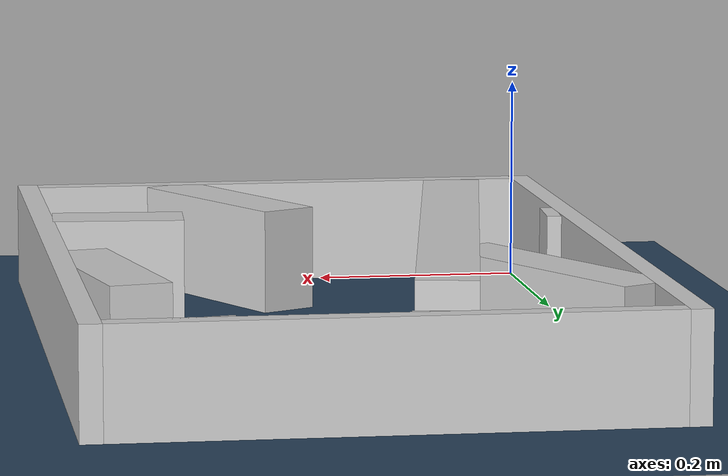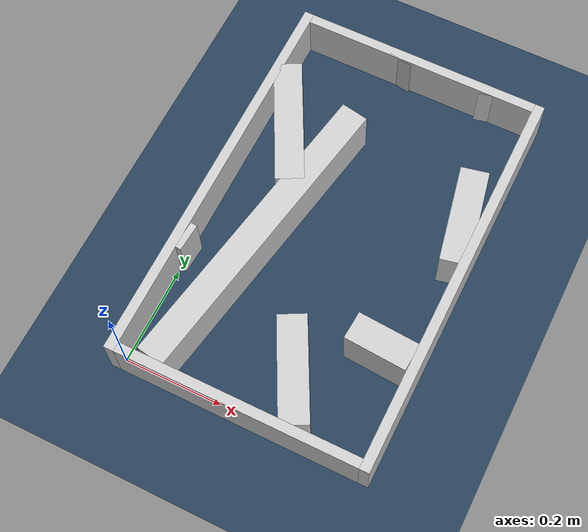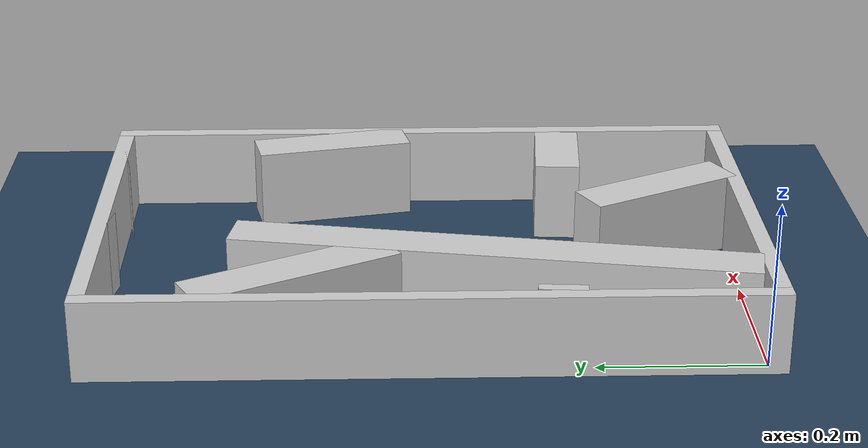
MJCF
<?xml version="1.0" ?>
<mujoco model="generated_real_template">
  <compiler angle="degree"/>
  <option timestep="0.002" integrator="implicitfast" iterations="100" cone="elliptic"/>
  <default>
    <geom density="1"/>
  </default>
  <asset>
    <texture builtin="gradient" height="3072" rgb1="0.3 0.5 0.7" rgb2="0 0 0" type="skybox" width="512"/>
    <texture builtin="checker" height="300" mark="edge" markrgb="0.8 0.8 0.8" name="groundplane" rgb1="0.2 0.3 0.4" rgb2="0.1 0.2 0.3" type="2d" width="300"/>
    <material name="groundplane" reflectance="0.2" texrepeat="5 5" texture="groundplane" texuniform="true"/>
  </asset>
  <worldbody>
    <light dir="0 0 -1" directional="true" pos="0 0 1.5"/>
    <geom name="floor" type="plane" condim="4" friction="0.5 0.005 0.001" material="groundplane" size="0 0 0.05"/>
    <body name="walls">
      <geom name="wall_boundary_left" type="box" condim="4" friction="1.0 0.005 0.0001" rgba="0.8 0.8 0.8 1" pos="-0.010000 0.387500 0.050000" euler="0 0 0.000000" size="0.010000 0.407500 0.050000"/>
      <geom name="wall_boundary_right" type="box" condim="4" friction="1.0 0.005 0.0001" rgba="0.8 0.8 0.8 1" pos="0.500000 0.387500 0.050000" euler="0 0 0.000000" size="0.010000 0.407500 0.050000"/>
      <geom name="wall_boundary_bottom" type="box" condim="4" friction="1.0 0.005 0.0001" rgba="0.8 0.8 0.8 1" pos="0.245000 -0.010000 0.050000" euler="0 0 0.000000" size="0.245000 0.010000 0.050000"/>
      <geom name="wall_boundary_top" type="box" condim="4" friction="1.0 0.005 0.0001" rgba="0.8 0.8 0.8 1" pos="0.245000 0.785000 0.050000" euler="0 0 0.000000" size="0.245000 0.010000 0.050000"/>
      <geom name="wall_inner_1_1" type="box" condim="4" friction="1.0 0.005 0.0001" rgba="0.8 0.8 0.8 1" pos="0.119706 0.311506 0.050000" euler="0 0 79.832258" size="0.316476 0.028500 0.050000"/>
      <geom name="wall_inner_1_2" type="box" condim="4" friction="1.0 0.005 0.0001" rgba="0.8 0.8 0.8 1" pos="0.202778 0.774695 0.050000" euler="0 0 79.832258" size="0.000310 0.028500 0.050000"/>
      <geom name="wall_inner_2_1" type="box" condim="4" friction="1.0 0.005 0.0001" rgba="0.8 0.8 0.8 1" pos="0.066202 0.548831 0.050000" euler="0 0 -62.259934" size="0.131002 0.028500 0.050000"/>
      <geom name="wall_inner_2_2" type="box" condim="4" friction="1.0 0.005 0.0001" rgba="0.8 0.8 0.8 1" pos="0.306062 0.092741 0.050000" euler="0 0 -62.259934" size="0.104783 0.028500 0.050000"/>
      <geom name="wall_inner_3_1" type="box" condim="4" friction="1.0 0.005 0.0001" rgba="0.8 0.8 0.8 1" pos="0.006944 0.238108 0.050000" euler="0 0 -3.876259" size="0.006960 0.028500 0.050000"/>
      <geom name="wall_inner_3_2" type="box" condim="4" friction="1.0 0.005 0.0001" rgba="0.8 0.8 0.8 1" pos="0.427127 0.209637 0.050000" euler="0 0 -3.876259" size="0.063017 0.028500 0.050000"/>
      <geom name="wall_inner_4_1" type="box" condim="4" friction="1.0 0.005 0.0001" rgba="0.8 0.8 0.8 1" pos="0.405680 0.774875 0.050000" euler="0 0 -78.188926" size="0.000128 0.028500 0.050000"/>
      <geom name="wall_inner_4_2" type="box" condim="4" friction="1.0 0.005 0.0001" rgba="0.8 0.8 0.8 1" pos="0.461510 0.507889 0.050000" euler="0 0 -78.188926" size="0.100605 0.028500 0.050000"/>
    </body>
  </worldbody>
</mujoco>
